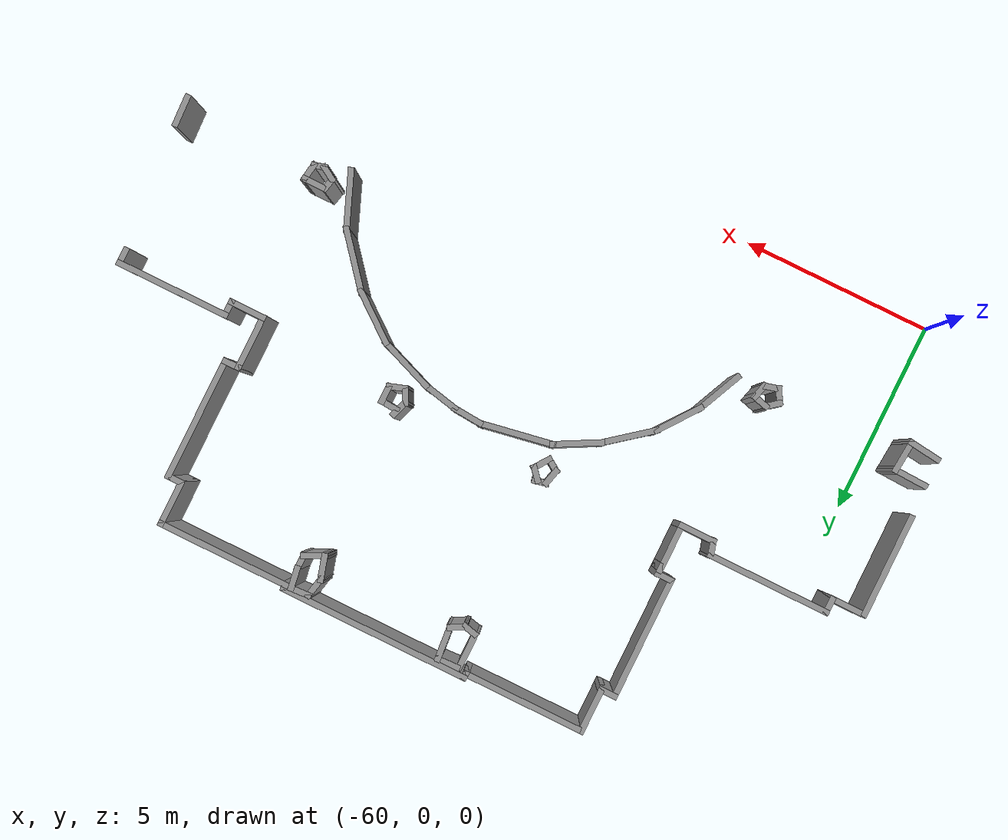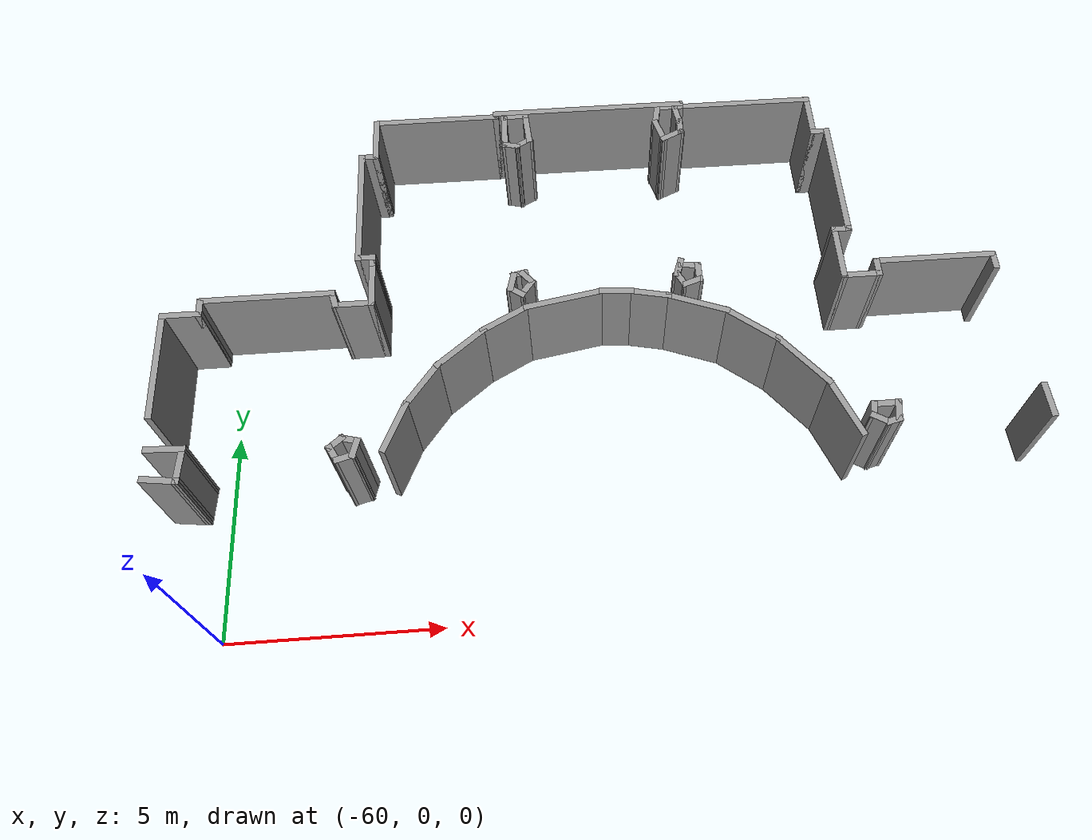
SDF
<sdf version="1.7">
 <model name="TD_n2">
  <pose>-6.42415 -9.1609 0 0 -0 0</pose>
  <link name="Wall_100">
   <collision name="Wall_100_Collision">
    <geometry><box><size>2.75 0.15 2.5</size></box></geometry>
    <pose>0 0 1.25 0 -0 0</pose>
   </collision>
   <visual name="Wall_100_Visual">
    <pose>0 0 1.25 0 -0 0</pose>
    <geometry><box><size>2.75 0.15 2.5</size></box></geometry>
    <material>
     <script><uri>file://media/materials/scripts/gazebo.material</uri><name>Gazebo/Grey</name></script>
     <ambient>1 1 1 1</ambient>
    </material>
    <meta><layer>0</layer></meta>
   </visual>
   <pose>-54.9332 15.0288 0 0 -0 1.5708</pose>
  </link>
  <link name="Wall_101">
   <collision name="Wall_101_Collision">
    <geometry><box><size>1 0.15 2.5</size></box></geometry>
    <pose>0 0 1.25 0 -0 0</pose>
   </collision>
   <visual name="Wall_101_Visual">
    <pose>0 0 1.25 0 -0 0</pose>
    <geometry><box><size>1 0.15 2.5</size></box></geometry>
    <material>
     <script><uri>file://media/materials/scripts/gazebo.material</uri><name>Gazebo/Grey</name></script>
     <ambient>1 1 1 1</ambient>
    </material>
    <meta><layer>0</layer></meta>
   </visual>
   <pose>-54.5082 16.3288 0 0 -0 0</pose>
  </link>
  <link name="Wall_102">
   <collision name="Wall_102_Collision">
    <geometry><box><size>0.5 0.15 2.5</size></box></geometry>
    <pose>0 0 1.25 0 -0 0</pose>
   </collision>
   <visual name="Wall_102_Visual">
    <pose>0 0 1.25 0 -0 0</pose>
    <geometry><box><size>0.5 0.15 2.5</size></box></geometry>
    <material>
     <script><uri>file://media/materials/scripts/gazebo.material</uri><name>Gazebo/Grey</name></script>
     <ambient>1 1 1 1</ambient>
    </material>
    <meta><layer>0</layer></meta>
   </visual>
   <pose>-54.0832 16.5038 0 0 -0 1.5708</pose>
  </link>
  <link name="Wall_103">
   <collision name="Wall_103_Collision">
    <geometry><box><size>3.25 0.15 2.5</size></box></geometry>
    <pose>0 0 1.25 0 -0 0</pose>
   </collision>
   <visual name="Wall_103_Visual">
    <pose>0 0 1.25 0 -0 0</pose>
    <geometry><box><size>3.25 0.15 2.5</size></box></geometry>
    <material>
     <script><uri>file://media/materials/scripts/gazebo.material</uri><name>Gazebo/Grey</name></script>
     <ambient>1 1 1 1</ambient>
    </material>
    <meta><layer>0</layer></meta>
   </visual>
   <pose>-52.5332 16.6788 0 0 -0 0</pose>
  </link>
  <link name="Wall_104">
   <collision name="Wall_104_Collision">
    <geometry><box><size>0.5 0.15 2.5</size></box></geometry>
    <pose>0 0 1.25 0 -0 0</pose>
   </collision>
   <visual name="Wall_104_Visual">
    <pose>0 0 1.25 0 -0 0</pose>
    <geometry><box><size>0.5 0.15 2.5</size></box></geometry>
    <material>
     <script><uri>file://media/materials/scripts/gazebo.material</uri><name>Gazebo/Grey</name></script>
     <ambient>1 1 1 1</ambient>
    </material>
    <meta><layer>0</layer></meta>
   </visual>
   <pose>-50.9379 16.5098 0 0 -0 -1.309</pose>
  </link>
  <link name="Wall_105">
   <collision name="Wall_105_Collision">
    <geometry><box><size>1 0.15 2.5</size></box></geometry>
    <pose>0 0 1.25 0 -0 0</pose>
   </collision>
   <visual name="Wall_105_Visual">
    <pose>0 0 1.25 0 -0 0</pose>
    <geometry><box><size>1 0.15 2.5</size></box></geometry>
    <material>
     <script><uri>file://media/materials/scripts/gazebo.material</uri><name>Gazebo/Grey</name></script>
     <ambient>1 1 1 1</ambient>
    </material>
    <meta><layer>0</layer></meta>
   </visual>
   <pose>-50.4676 16.3407 0 0 -0 0</pose>
  </link>
  <link name="Wall_106">
   <collision name="Wall_106_Collision">
    <geometry><box><size>1.25 0.15 2.5</size></box></geometry>
    <pose>0 0 1.25 0 -0 0</pose>
   </collision>
   <visual name="Wall_106_Visual">
    <pose>0 0 1.25 0 -0 0</pose>
    <geometry><box><size>1.25 0.15 2.5</size></box></geometry>
    <material>
     <script><uri>file://media/materials/scripts/gazebo.material</uri><name>Gazebo/Grey</name></script>
     <ambient>1 1 1 1</ambient>
    </material>
    <meta><layer>0</layer></meta>
   </visual>
   <pose>-50.0427 16.8907 0 0 -0 1.5708</pose>
  </link>
  <link name="Wall_108">
   <collision name="Wall_108_Collision">
    <geometry><box><size>0.25 0.15 2.5</size></box></geometry>
    <pose>0 0 1.25 0 -0 0</pose>
   </collision>
   <visual name="Wall_108_Visual">
    <pose>0 0 1.25 0 -0 0</pose>
    <geometry><box><size>0.25 0.15 2.5</size></box></geometry>
    <material>
     <script><uri>file://media/materials/scripts/gazebo.material</uri><name>Gazebo/Grey</name></script>
     <ambient>1 1 1 1</ambient>
    </material>
    <meta><layer>0</layer></meta>
   </visual>
   <pose>-50.0427 17.4907 0 0 -0 1.5708</pose>
  </link>
  <link name="Wall_109">
   <collision name="Wall_109_Collision">
    <geometry><box><size>0.15 0.15 2.5</size></box></geometry>
    <pose>0 0 1.25 0 -0 0</pose>
   </collision>
   <visual name="Wall_109_Visual">
    <pose>0 0 1.25 0 -0 0</pose>
    <geometry><box><size>0.15 0.15 2.5</size></box></geometry>
    <material>
     <script><uri>file://media/materials/scripts/gazebo.material</uri><name>Gazebo/Grey</name></script>
     <ambient>1 1 1 1</ambient>
    </material>
    <meta><layer>0</layer></meta>
   </visual>
   <pose>-50.0427 17.5407 0 0 -0 0</pose>
  </link>
  <link name="Wall_110">
   <collision name="Wall_110_Collision">
    <geometry><box><size>0.25 0.15 2.5</size></box></geometry>
    <pose>0 0 1.25 0 -0 0</pose>
   </collision>
   <visual name="Wall_110_Visual">
    <pose>0 0 1.25 0 -0 0</pose>
    <geometry><box><size>0.25 0.15 2.5</size></box></geometry>
    <material>
     <script><uri>file://media/materials/scripts/gazebo.material</uri><name>Gazebo/Grey</name></script>
     <ambient>1 1 1 1</ambient>
    </material>
    <meta><layer>0</layer></meta>
   </visual>
   <pose>-50.0427 17.5907 0 0 -0 1.5708</pose>
  </link>
  <link name="Wall_111">
   <collision name="Wall_111_Collision">
    <geometry><box><size>0.5 0.15 2.5</size></box></geometry>
    <pose>0 0 1.25 0 -0 0</pose>
   </collision>
   <visual name="Wall_111_Visual">
    <pose>0 0 1.25 0 -0 0</pose>
    <geometry><box><size>0.5 0.15 2.5</size></box></geometry>
    <material>
     <script><uri>file://media/materials/scripts/gazebo.material</uri><name>Gazebo/Grey</name></script>
     <ambient>1 1 1 1</ambient>
    </material>
    <meta><layer>0</layer></meta>
   </visual>
   <pose>-50.2176 17.6407 0 0 -0 3.14159</pose>
  </link>
  <link name="Wall_112">
   <collision name="Wall_112_Collision">
    <geometry><box><size>3.25 0.15 2.5</size></box></geometry>
    <pose>0 0 1.25 0 -0 0</pose>
   </collision>
   <visual name="Wall_112_Visual">
    <pose>0 0 1.25 0 -0 0</pose>
    <geometry><box><size>3.25 0.15 2.5</size></box></geometry>
    <material>
     <script><uri>file://media/materials/scripts/gazebo.material</uri><name>Gazebo/Grey</name></script>
     <ambient>1 1 1 1</ambient>
    </material>
    <meta><layer>0</layer></meta>
   </visual>
   <pose>-50.3926 19.1907 0 0 -0 1.5708</pose>
  </link>
  <link name="Wall_113">
   <collision name="Wall_113_Collision">
    <geometry><box><size>0.5 0.15 2.5</size></box></geometry>
    <pose>0 0 1.25 0 -0 0</pose>
   </collision>
   <visual name="Wall_113_Visual">
    <pose>0 0 1.25 0 -0 0</pose>
    <geometry><box><size>0.5 0.15 2.5</size></box></geometry>
    <material>
     <script><uri>file://media/materials/scripts/gazebo.material</uri><name>Gazebo/Grey</name></script>
     <ambient>1 1 1 1</ambient>
    </material>
    <meta><layer>0</layer></meta>
   </visual>
   <pose>-50.2176 20.7407 0 0 -0 0</pose>
  </link>
  <link name="Wall_114">
   <collision name="Wall_114_Collision">
    <geometry><box><size>1.25 0.15 2.5</size></box></geometry>
    <pose>0 0 1.25 0 -0 0</pose>
   </collision>
   <visual name="Wall_114_Visual">
    <pose>0 0 1.25 0 -0 0</pose>
    <geometry><box><size>1.25 0.15 2.5</size></box></geometry>
    <material>
     <script><uri>file://media/materials/scripts/gazebo.material</uri><name>Gazebo/Grey</name></script>
     <ambient>1 1 1 1</ambient>
    </material>
    <meta><layer>0</layer></meta>
   </visual>
   <pose>-50.0427 21.2907 0 0 -0 1.5708</pose>
  </link>
  <link name="Wall_115">
   <collision name="Wall_115_Collision">
    <geometry><box><size>3.25 0.15 2.5</size></box></geometry>
    <pose>0 0 1.25 0 -0 0</pose>
   </collision>
   <visual name="Wall_115_Visual">
    <pose>0 0 1.25 0 -0 0</pose>
    <geometry><box><size>3.25 0.15 2.5</size></box></geometry>
    <material>
     <script><uri>file://media/materials/scripts/gazebo.material</uri><name>Gazebo/Grey</name></script>
     <ambient>1 1 1 1</ambient>
    </material>
    <meta><layer>0</layer></meta>
   </visual>
   <pose>-48.4926 21.8407 0 0 -0 0</pose>
  </link>
  <link name="Wall_116">
   <collision name="Wall_116_Collision">
    <geometry><box><size>0.25 0.15 2.5</size></box></geometry>
    <pose>0 0 1.25 0 -0 0</pose>
   </collision>
   <visual name="Wall_116_Visual">
    <pose>0 0 1.25 0 -0 0</pose>
    <geometry><box><size>0.25 0.15 2.5</size></box></geometry>
    <material>
     <script><uri>file://media/materials/scripts/gazebo.material</uri><name>Gazebo/Grey</name></script>
     <ambient>1 1 1 1</ambient>
    </material>
    <meta><layer>0</layer></meta>
   </visual>
   <pose>-46.9426 21.8907 0 0 -0 1.5708</pose>
  </link>
  <link name="Wall_117">
   <collision name="Wall_117_Collision">
    <geometry><box><size>5 0.15 2.5</size></box></geometry>
    <pose>0 0 1.25 0 -0 0</pose>
   </collision>
   <visual name="Wall_117_Visual">
    <pose>0 0 1.25 0 -0 0</pose>
    <geometry><box><size>5 0.15 2.5</size></box></geometry>
    <material>
     <script><uri>file://media/materials/scripts/gazebo.material</uri><name>Gazebo/Grey</name></script>
     <ambient>1 1 1 1</ambient>
    </material>
    <meta><layer>0</layer></meta>
   </visual>
   <pose>-44.5176 21.9407 0 0 -0 0</pose>
  </link>
  <link name="Wall_118">
   <collision name="Wall_118_Collision">
    <geometry><box><size>0.25 0.15 2.5</size></box></geometry>
    <pose>0 0 1.25 0 -0 0</pose>
   </collision>
   <visual name="Wall_118_Visual">
    <pose>0 0 1.25 0 -0 0</pose>
    <geometry><box><size>0.25 0.15 2.5</size></box></geometry>
    <material>
     <script><uri>file://media/materials/scripts/gazebo.material</uri><name>Gazebo/Grey</name></script>
     <ambient>1 1 1 1</ambient>
    </material>
    <meta><layer>0</layer></meta>
   </visual>
   <pose>-42.0926 21.8907 0 0 -0 -1.5708</pose>
  </link>
  <link name="Wall_119">
   <collision name="Wall_119_Collision">
    <geometry><box><size>3.5 0.15 2.5</size></box></geometry>
    <pose>0 0 1.25 0 -0 0</pose>
   </collision>
   <visual name="Wall_119_Visual">
    <pose>0 0 1.25 0 -0 0</pose>
    <geometry><box><size>3.5 0.15 2.5</size></box></geometry>
    <material>
     <script><uri>file://media/materials/scripts/gazebo.material</uri><name>Gazebo/Grey</name></script>
     <ambient>1 1 1 1</ambient>
    </material>
    <meta><layer>0</layer></meta>
   </visual>
   <pose>-40.4177 21.8407 0 0 -0 0</pose>
  </link>
  <link name="Wall_120">
   <collision name="Wall_120_Collision">
    <geometry><box><size>1.25 0.15 2.5</size></box></geometry>
    <pose>0 0 1.25 0 -0 0</pose>
   </collision>
   <visual name="Wall_120_Visual">
    <pose>0 0 1.25 0 -0 0</pose>
    <geometry><box><size>1.25 0.15 2.5</size></box></geometry>
    <material>
     <script><uri>file://media/materials/scripts/gazebo.material</uri><name>Gazebo/Grey</name></script>
     <ambient>1 1 1 1</ambient>
    </material>
    <meta><layer>0</layer></meta>
   </visual>
   <pose>-38.7426 21.2907 0 0 -0 -1.5708</pose>
  </link>
  <link name="Wall_121">
   <collision name="Wall_121_Collision">
    <geometry><box><size>0.5 0.15 2.5</size></box></geometry>
    <pose>0 0 1.25 0 -0 0</pose>
   </collision>
   <visual name="Wall_121_Visual">
    <pose>0 0 1.25 0 -0 0</pose>
    <geometry><box><size>0.5 0.15 2.5</size></box></geometry>
    <material>
     <script><uri>file://media/materials/scripts/gazebo.material</uri><name>Gazebo/Grey</name></script>
     <ambient>1 1 1 1</ambient>
    </material>
    <meta><layer>0</layer></meta>
   </visual>
   <pose>-38.5676 20.7407 0 0 -0 0</pose>
  </link>
  <link name="Wall_122">
   <collision name="Wall_122_Collision">
    <geometry><box><size>3.25 0.15 2.5</size></box></geometry>
    <pose>0 0 1.25 0 -0 0</pose>
   </collision>
   <visual name="Wall_122_Visual">
    <pose>0 0 1.25 0 -0 0</pose>
    <geometry><box><size>3.25 0.15 2.5</size></box></geometry>
    <material>
     <script><uri>file://media/materials/scripts/gazebo.material</uri><name>Gazebo/Grey</name></script>
     <ambient>1 1 1 1</ambient>
    </material>
    <meta><layer>0</layer></meta>
   </visual>
   <pose>-38.3926 19.1907 0 0 -0 -1.5708</pose>
  </link>
  <link name="Wall_123">
   <collision name="Wall_123_Collision">
    <geometry><box><size>0.5 0.15 2.5</size></box></geometry>
    <pose>0 0 1.25 0 -0 0</pose>
   </collision>
   <visual name="Wall_123_Visual">
    <pose>0 0 1.25 0 -0 0</pose>
    <geometry><box><size>0.5 0.15 2.5</size></box></geometry>
    <material>
     <script><uri>file://media/materials/scripts/gazebo.material</uri><name>Gazebo/Grey</name></script>
     <ambient>1 1 1 1</ambient>
    </material>
    <meta><layer>0</layer></meta>
   </visual>
   <pose>-38.5676 17.6407 0 0 -0 3.14159</pose>
  </link>
  <link name="Wall_125">
   <collision name="Wall_125_Collision">
    <geometry><box><size>1.5 0.15 2.5</size></box></geometry>
    <pose>0 0 1.25 0 -0 0</pose>
   </collision>
   <visual name="Wall_125_Visual">
    <pose>0 0 1.25 0 -0 0</pose>
    <geometry><box><size>1.5 0.15 2.5</size></box></geometry>
    <material>
     <script><uri>file://media/materials/scripts/gazebo.material</uri><name>Gazebo/Grey</name></script>
     <ambient>1 1 1 1</ambient>
    </material>
    <meta><layer>0</layer></meta>
   </visual>
   <pose>-38.7426 16.9657 0 0 -0 -1.5708</pose>
  </link>
  <link name="Wall_126">
   <collision name="Wall_126_Collision">
    <geometry><box><size>1 0.15 2.5</size></box></geometry>
    <pose>0 0 1.25 0 -0 0</pose>
   </collision>
   <visual name="Wall_126_Visual">
    <pose>0 0 1.25 0 -0 0</pose>
    <geometry><box><size>1 0.15 2.5</size></box></geometry>
    <material>
     <script><uri>file://media/materials/scripts/gazebo.material</uri><name>Gazebo/Grey</name></script>
     <ambient>1 1 1 1</ambient>
    </material>
    <meta><layer>0</layer></meta>
   </visual>
   <pose>-38.3176 16.2907 0 0 -0 0</pose>
  </link>
  <link name="Wall_127">
   <collision name="Wall_127_Collision">
    <geometry><box><size>0.5 0.15 2.5</size></box></geometry>
    <pose>0 0 1.25 0 -0 0</pose>
   </collision>
   <visual name="Wall_127_Visual">
    <pose>0 0 1.25 0 -0 0</pose>
    <geometry><box><size>0.5 0.15 2.5</size></box></geometry>
    <material>
     <script><uri>file://media/materials/scripts/gazebo.material</uri><name>Gazebo/Grey</name></script>
     <ambient>1 1 1 1</ambient>
    </material>
    <meta><layer>0</layer></meta>
   </visual>
   <pose>-37.8926 16.4657 0 0 -0 1.5708</pose>
  </link>
  <link name="Wall_128">
   <collision name="Wall_128_Collision">
    <geometry><box><size>3 0.15 2.5</size></box></geometry>
    <pose>0 0 1.25 0 -0 0</pose>
   </collision>
   <visual name="Wall_128_Visual">
    <pose>0 0 1.25 0 -0 0</pose>
    <geometry><box><size>3 0.15 2.5</size></box></geometry>
    <material>
     <script><uri>file://media/materials/scripts/gazebo.material</uri><name>Gazebo/Grey</name></script>
     <ambient>1 1 1 1</ambient>
    </material>
    <meta><layer>0</layer></meta>
   </visual>
   <pose>-36.4676 16.6407 0 0 -0 0</pose>
  </link>
  <link name="Wall_129">
   <collision name="Wall_129_Collision">
    <geometry><box><size>0.5 0.15 2.5</size></box></geometry>
    <pose>0 0 1.25 0 -0 0</pose>
   </collision>
   <visual name="Wall_129_Visual">
    <pose>0 0 1.25 0 -0 0</pose>
    <geometry><box><size>0.5 0.15 2.5</size></box></geometry>
    <material>
     <script><uri>file://media/materials/scripts/gazebo.material</uri><name>Gazebo/Grey</name></script>
     <ambient>1 1 1 1</ambient>
    </material>
    <meta><layer>0</layer></meta>
   </visual>
   <pose>-35.0427 16.4657 0 0 -0 -1.5708</pose>
  </link>
  <link name="Wall_325">
   <collision name="Wall_325_Collision">
    <geometry><box><size>1.98676 0.15 2.5</size></box></geometry>
    <pose>0 0 1.25 0 -0 0</pose>
   </collision>
   <visual name="Wall_325_Visual">
    <pose>0 0 1.25 0 -0 0</pose>
    <geometry><box><size>1.98676 0.15 2.5</size></box></geometry>
    <material>
     <script><uri>file://media/materials/scripts/gazebo.material</uri><name>Gazebo/Grey</name></script>
     <ambient>1 1 1 1</ambient>
    </material>
    <meta><layer>0</layer></meta>
   </visual>
   <pose>-45.4816 16.113 0 0 -0 -2.96692</pose>
  </link>
  <link name="Wall_326">
   <collision name="Wall_326_Collision">
    <geometry><box><size>1.32824 0.15 2.5</size></box></geometry>
    <pose>0 0 1.25 0 -0 0</pose>
   </collision>
   <visual name="Wall_326_Visual">
    <pose>0 0 1.25 0 -0 0</pose>
    <geometry><box><size>1.32824 0.15 2.5</size></box></geometry>
    <material>
     <script><uri>file://media/materials/scripts/gazebo.material</uri><name>Gazebo/Grey</name></script>
     <ambient>1 1 1 1</ambient>
    </material>
    <meta><layer>0</layer></meta>
   </visual>
   <pose>-46.9047 15.6741 0 0 -0 -2.64765</pose>
  </link>
  <link name="Wall_327">
   <collision name="Wall_327_Collision">
    <geometry><box><size>1.51259 0.15 2.5</size></box></geometry>
    <pose>0 0 1.25 0 -0 0</pose>
   </collision>
   <visual name="Wall_327_Visual">
    <pose>0 0 1.25 0 -0 0</pose>
    <geometry><box><size>1.51259 0.15 2.5</size></box></geometry>
    <material>
     <script><uri>file://media/materials/scripts/gazebo.material</uri><name>Gazebo/Grey</name></script>
     <ambient>1 1 1 1</ambient>
    </material>
    <meta><layer>0</layer></meta>
   </visual>
   <pose>-47.9554 14.9692 0 0 -0 -2.46685</pose>
  </link>
  <link name="Wall_328">
   <collision name="Wall_328_Collision">
    <geometry><box><size>1.34701 0.15 2.5</size></box></geometry>
    <pose>0 0 1.25 0 -0 0</pose>
   </collision>
   <visual name="Wall_328_Visual">
    <pose>0 0 1.25 0 -0 0</pose>
    <geometry><box><size>1.34701 0.15 2.5</size></box></geometry>
    <material>
     <script><uri>file://media/materials/scripts/gazebo.material</uri><name>Gazebo/Grey</name></script>
     <ambient>1 1 1 1</ambient>
    </material>
    <meta><layer>0</layer></meta>
   </visual>
   <pose>-48.8465 14.0648 0 0 -0 -2.2143</pose>
  </link>
  <link name="Wall_329">
   <collision name="Wall_329_Collision">
    <geometry><box><size>1.31678 0.15 2.5</size></box></geometry>
    <pose>0 0 1.25 0 -0 0</pose>
   </collision>
   <visual name="Wall_329_Visual">
    <pose>0 0 1.25 0 -0 0</pose>
    <geometry><box><size>1.31678 0.15 2.5</size></box></geometry>
    <material>
     <script><uri>file://media/materials/scripts/gazebo.material</uri><name>Gazebo/Grey</name></script>
     <ambient>1 1 1 1</ambient>
    </material>
    <meta><layer>0</layer></meta>
   </visual>
   <pose>-49.445 13.054 0 0 -0 -1.99365</pose>
  </link>
  <link name="Wall_344">
   <collision name="Wall_344_Collision">
    <geometry><box><size>1.58247 0.15 2.5</size></box></geometry>
    <pose>0 0 1.25 0 -0 0</pose>
   </collision>
   <visual name="Wall_344_Visual">
    <pose>0 0 1.25 0 -0 0</pose>
    <geometry><box><size>1.58247 0.15 2.5</size></box></geometry>
    <material>
     <script><uri>file://media/materials/scripts/gazebo.material</uri><name>Gazebo/Grey</name></script>
     <ambient>1 1 1 1</ambient>
    </material>
    <meta><layer>0</layer></meta>
   </visual>
   <pose>-39.3369 12.8146 0 0 -0 1.9513</pose>
  </link>
  <link name="Wall_345">
   <collision name="Wall_345_Collision">
    <geometry><box><size>1.69968 0.15 2.5</size></box></geometry>
    <pose>0 0 1.25 0 -0 0</pose>
   </collision>
   <visual name="Wall_345_Visual">
    <pose>0 0 1.25 0 -0 0</pose>
    <geometry><box><size>1.69968 0.15 2.5</size></box></geometry>
    <material>
     <script><uri>file://media/materials/scripts/gazebo.material</uri><name>Gazebo/Grey</name></script>
     <ambient>1 1 1 1</ambient>
    </material>
    <meta><layer>0</layer></meta>
   </visual>
   <pose>-40.0951 14.0781 0 0 -0 2.25894</pose>
  </link>
  <link name="Wall_346">
   <collision name="Wall_346_Collision">
    <geometry><box><size>1.53347 0.15 2.5</size></box></geometry>
    <pose>0 0 1.25 0 -0 0</pose>
   </collision>
   <visual name="Wall_346_Visual">
    <pose>0 0 1.25 0 -0 0</pose>
    <geometry><box><size>1.53347 0.15 2.5</size></box></geometry>
    <material>
     <script><uri>file://media/materials/scripts/gazebo.material</uri><name>Gazebo/Grey</name></script>
     <ambient>1 1 1 1</ambient>
    </material>
    <meta><layer>0</layer></meta>
   </visual>
   <pose>-41.1325 15.1022 0 0 -0 2.47886</pose>
  </link>
  <link name="Wall_347">
   <collision name="Wall_347_Collision">
    <geometry><box><size>1.5728 0.15 2.5</size></box></geometry>
    <pose>0 0 1.25 0 -0 0</pose>
   </collision>
   <visual name="Wall_347_Visual">
    <pose>0 0 1.25 0 -0 0</pose>
    <geometry><box><size>1.5728 0.15 2.5</size></box></geometry>
    <material>
     <script><uri>file://media/materials/scripts/gazebo.material</uri><name>Gazebo/Grey</name></script>
     <ambient>1 1 1 1</ambient>
    </material>
    <meta><layer>0</layer></meta>
   </visual>
   <pose>-42.3428 15.7805 0 0 -0 2.77845</pose>
  </link>
  <link name="Wall_348">
   <collision name="Wall_348_Collision">
    <geometry><box><size>1.04734 0.15 2.5</size></box></geometry>
    <pose>0 0 1.25 0 -0 0</pose>
   </collision>
   <visual name="Wall_348_Visual">
    <pose>0 0 1.25 0 -0 0</pose>
    <geometry><box><size>1.04734 0.15 2.5</size></box></geometry>
    <material>
     <script><uri>file://media/materials/scripts/gazebo.material</uri><name>Gazebo/Grey</name></script>
     <ambient>1 1 1 1</ambient>
    </material>
    <meta><layer>0</layer></meta>
   </visual>
   <pose>-43.4467 16.1263 0 0 -0 2.93257</pose>
  </link>
  <link name="Wall_349">
   <collision name="Wall_349_Collision">
    <geometry><box><size>0.843648 0.15 2.5</size></box></geometry>
    <pose>0 0 1.25 0 -0 0</pose>
   </collision>
   <visual name="Wall_349_Visual">
    <pose>0 0 1.25 0 -0 0</pose>
    <geometry><box><size>0.843648 0.15 2.5</size></box></geometry>
    <material>
     <script><uri>file://media/materials/scripts/gazebo.material</uri><name>Gazebo/Grey</name></script>
     <ambient>1 1 1 1</ambient>
    </material>
    <meta><layer>0</layer></meta>
   </visual>
   <pose>-44.2314 16.246 0 0 -0 3.06482</pose>
  </link>
  <link name="Wall_351">
   <collision name="Wall_351_Collision">
    <geometry><box><size>1.02896 0.15 2.5</size></box></geometry>
    <pose>0 0 1.25 0 -0 0</pose>
   </collision>
   <visual name="Wall_351_Visual">
    <pose>0 0 1.25 0 -0 0</pose>
    <geometry><box><size>1.02896 0.15 2.5</size></box></geometry>
    <material>
     <script><uri>file://media/materials/scripts/gazebo.material</uri><name>Gazebo/Grey</name></script>
     <ambient>1 1 1 1</ambient>
    </material>
    <meta><layer>0</layer></meta>
   </visual>
   <pose>-46.7288 21.3317 0 0 -0 -1.5708</pose>
  </link>
  <link name="Wall_352">
   <collision name="Wall_352_Collision">
    <geometry><box><size>0.458601 0.15 2.5</size></box></geometry>
    <pose>0 0 1.25 0 -0 0</pose>
   </collision>
   <visual name="Wall_352_Visual">
    <pose>0 0 1.25 0 -0 0</pose>
    <geometry><box><size>0.458601 0.15 2.5</size></box></geometry>
    <material>
     <script><uri>file://media/materials/scripts/gazebo.material</uri><name>Gazebo/Grey</name></script>
     <ambient>1 1 1 1</ambient>
    </material>
    <meta><layer>0</layer></meta>
   </visual>
   <pose>-46.5784 20.8575 0 0 -0 -0.226799</pose>
  </link>
  <link name="Wall_353">
   <collision name="Wall_353_Collision">
    <geometry><box><size>0.52297 0.15 2.5</size></box></geometry>
    <pose>0 0 1.25 0 -0 0</pose>
   </collision>
   <visual name="Wall_353_Visual">
    <pose>0 0 1.25 0 -0 0</pose>
    <geometry><box><size>0.52297 0.15 2.5</size></box></geometry>
    <material>
     <script><uri>file://media/materials/scripts/gazebo.material</uri><name>Gazebo/Grey</name></script>
     <ambient>1 1 1 1</ambient>
    </material>
    <meta><layer>0</layer></meta>
   </visual>
   <pose>-46.2661 20.9154 0 0 -0 0.519146</pose>
  </link>
  <link name="Wall_354">
   <collision name="Wall_354_Collision">
    <geometry><box><size>0.96254 0.15 2.5</size></box></geometry>
    <pose>0 0 1.25 0 -0 0</pose>
   </collision>
   <visual name="Wall_354_Visual">
    <pose>0 0 1.25 0 -0 0</pose>
    <geometry><box><size>0.96254 0.15 2.5</size></box></geometry>
    <material>
     <script><uri>file://media/materials/scripts/gazebo.material</uri><name>Gazebo/Grey</name></script>
     <ambient>1 1 1 1</ambient>
    </material>
    <meta><layer>0</layer></meta>
   </visual>
   <pose>-46.1389 21.4127 0 0 -0 1.6563</pose>
  </link>
  <link name="Wall_355">
   <collision name="Wall_355_Collision">
    <geometry><box><size>0.659399 0.15 2.5</size></box></geometry>
    <pose>0 0 1.25 0 -0 0</pose>
   </collision>
   <visual name="Wall_355_Visual">
    <pose>0 0 1.25 0 -0 0</pose>
    <geometry><box><size>0.659399 0.15 2.5</size></box></geometry>
    <material>
     <script><uri>file://media/materials/scripts/gazebo.material</uri><name>Gazebo/Grey</name></script>
     <ambient>1 1 1 1</ambient>
    </material>
    <meta><layer>0</layer></meta>
   </visual>
   <pose>-46.4281 21.8059 0 0 -0 -3.09617</pose>
  </link>
  <link name="Wall_357">
   <collision name="Wall_357_Collision">
    <geometry><box><size>0.728265 0.15 2.5</size></box></geometry>
    <pose>0 0 1.25 0 -0 0</pose>
   </collision>
   <visual name="Wall_357_Visual">
    <pose>0 0 1.25 0 -0 0</pose>
    <geometry><box><size>0.728265 0.15 2.5</size></box></geometry>
    <material>
     <script><uri>file://media/materials/scripts/gazebo.material</uri><name>Gazebo/Grey</name></script>
     <ambient>1 1 1 1</ambient>
    </material>
    <meta><layer>0</layer></meta>
   </visual>
   <pose>-42.7156 21.0773 0 0 -0 -1.287</pose>
  </link>
  <link name="Wall_358">
   <collision name="Wall_358_Collision">
    <geometry><box><size>0.657294 0.15 2.5</size></box></geometry>
    <pose>0 0 1.25 0 -0 0</pose>
   </collision>
   <visual name="Wall_358_Visual">
    <pose>0 0 1.25 0 -0 0</pose>
    <geometry><box><size>0.657294 0.15 2.5</size></box></geometry>
    <material>
     <script><uri>file://media/materials/scripts/gazebo.material</uri><name>Gazebo/Grey</name></script>
     <ambient>1 1 1 1</ambient>
    </material>
    <meta><layer>0</layer></meta>
   </visual>
   <pose>-42.4033 20.9038 0 0 -0 0.422854</pose>
  </link>
  <link name="Wall_359">
   <collision name="Wall_359_Collision">
    <geometry><box><size>0.5 0.15 2.5</size></box></geometry>
    <pose>0 0 1.25 0 -0 0</pose>
   </collision>
   <visual name="Wall_359_Visual">
    <pose>0 0 1.25 0 -0 0</pose>
    <geometry><box><size>0.5 0.15 2.5</size></box></geometry>
    <material>
     <script><uri>file://media/materials/scripts/gazebo.material</uri><name>Gazebo/Grey</name></script>
     <ambient>1 1 1 1</ambient>
    </material>
    <meta><layer>0</layer></meta>
   </visual>
   <pose>-42.172 21.1829 0 0 -0 1.5708</pose>
  </link>
  <link name="Wall_360">
   <collision name="Wall_360_Collision">
    <geometry><box><size>0.645057 0.15 2.5</size></box></geometry>
    <pose>0 0 1.25 0 -0 0</pose>
   </collision>
   <visual name="Wall_360_Visual">
    <pose>0 0 1.25 0 -0 0</pose>
    <geometry><box><size>0.645057 0.15 2.5</size></box></geometry>
    <material>
     <script><uri>file://media/materials/scripts/gazebo.material</uri><name>Gazebo/Grey</name></script>
     <ambient>1 1 1 1</ambient>
    </material>
    <meta><layer>0</layer></meta>
   </visual>
   <pose>-42.2108 21.6024 0 0 -0 1.72813</pose>
  </link>
  <link name="Wall_361">
   <collision name="Wall_361_Collision">
    <geometry><box><size>0.602985 0.15 2.5</size></box></geometry>
    <pose>0 0 1.25 0 -0 0</pose>
   </collision>
   <visual name="Wall_361_Visual">
    <pose>0 0 1.25 0 -0 0</pose>
    <geometry><box><size>0.602985 0.15 2.5</size></box></geometry>
    <material>
     <script><uri>file://media/materials/scripts/gazebo.material</uri><name>Gazebo/Grey</name></script>
     <ambient>1 1 1 1</ambient>
    </material>
    <meta><layer>0</layer></meta>
   </visual>
   <pose>-42.4757 21.8335 0 0 -0 -3.08284</pose>
  </link>
  <link name="Wall_362">
   <collision name="Wall_362_Collision">
    <geometry><box><size>0.624931 0.15 2.5</size></box></geometry>
    <pose>0 0 1.25 0 -0 0</pose>
   </collision>
   <visual name="Wall_362_Visual">
    <pose>0 0 1.25 0 -0 0</pose>
    <geometry><box><size>0.624931 0.15 2.5</size></box></geometry>
    <material>
     <script><uri>file://media/materials/scripts/gazebo.material</uri><name>Gazebo/Grey</name></script>
     <ambient>1 1 1 1</ambient>
    </material>
    <meta><layer>0</layer></meta>
   </visual>
   <pose>-42.7492 21.5875 0 0 -0 -1.77165</pose>
  </link>
  <link name="Wall_364">
   <collision name="Wall_364_Collision">
    <geometry><box><size>0.475179 0.15 2.5</size></box></geometry>
    <pose>0 0 1.25 0 -0 0</pose>
   </collision>
   <visual name="Wall_364_Visual">
    <pose>0 0 1.25 0 -0 0</pose>
    <geometry><box><size>0.475179 0.15 2.5</size></box></geometry>
    <material>
     <script><uri>file://media/materials/scripts/gazebo.material</uri><name>Gazebo/Grey</name></script>
     <ambient>1 1 1 1</ambient>
    </material>
    <meta><layer>0</layer></meta>
   </visual>
   <pose>-46.3333 16.7755 0 0 -0 -0.851966</pose>
  </link>
  <link name="Wall_365">
   <collision name="Wall_365_Collision">
    <geometry><box><size>0.566072 0.15 2.5</size></box></geometry>
    <pose>0 0 1.25 0 -0 0</pose>
   </collision>
   <visual name="Wall_365_Visual">
    <pose>0 0 1.25 0 -0 0</pose>
    <geometry><box><size>0.566072 0.15 2.5</size></box></geometry>
    <material>
     <script><uri>file://media/materials/scripts/gazebo.material</uri><name>Gazebo/Grey</name></script>
     <ambient>1 1 1 1</ambient>
    </material>
    <meta><layer>0</layer></meta>
   </visual>
   <pose>-46.3486 16.4848 0 0 -0 -2.19959</pose>
  </link>
  <link name="Wall_366">
   <collision name="Wall_366_Collision">
    <geometry><box><size>0.480884 0.15 2.5</size></box></geometry>
    <pose>0 0 1.25 0 -0 0</pose>
   </collision>
   <visual name="Wall_366_Visual">
    <pose>0 0 1.25 0 -0 0</pose>
    <geometry><box><size>0.480884 0.15 2.5</size></box></geometry>
    <material>
     <script><uri>file://media/materials/scripts/gazebo.material</uri><name>Gazebo/Grey</name></script>
     <ambient>1 1 1 1</ambient>
    </material>
    <meta><layer>0</layer></meta>
   </visual>
   <pose>-46.6086 16.4084 0 0 -0 2.55359</pose>
  </link>
  <link name="Wall_367">
   <collision name="Wall_367_Collision">
    <geometry><box><size>0.52838 0.15 2.5</size></box></geometry>
    <pose>0 0 1.25 0 -0 0</pose>
   </collision>
   <visual name="Wall_367_Visual">
    <pose>0 0 1.25 0 -0 0</pose>
    <geometry><box><size>0.52838 0.15 2.5</size></box></geometry>
    <material>
     <script><uri>file://media/materials/scripts/gazebo.material</uri><name>Gazebo/Grey</name></script>
     <ambient>1 1 1 1</ambient>
    </material>
    <meta><layer>0</layer></meta>
   </visual>
   <pose>-46.7004 16.6837 0 0 -0 1.32582</pose>
  </link>
  <link name="Wall_368">
   <collision name="Wall_368_Collision">
    <geometry><box><size>0.432028 0.15 2.5</size></box></geometry>
    <pose>0 0 1.25 0 -0 0</pose>
   </collision>
   <visual name="Wall_368_Visual">
    <pose>0 0 1.25 0 -0 0</pose>
    <geometry><box><size>0.432028 0.15 2.5</size></box></geometry>
    <material>
     <script><uri>file://media/materials/scripts/gazebo.material</uri><name>Gazebo/Grey</name></script>
     <ambient>1 1 1 1</ambient>
    </material>
    <meta><layer>0</layer></meta>
   </visual>
   <pose>-46.5169 16.8978 0 0 -0 0.218669</pose>
  </link>
  <link name="Wall_370">
   <collision name="Wall_370_Collision">
    <geometry><box><size>0.548848 0.15 2.5</size></box></geometry>
    <pose>0 0 1.25 0 -0 0</pose>
   </collision>
   <visual name="Wall_370_Visual">
    <pose>0 0 1.25 0 -0 0</pose>
    <geometry><box><size>0.548848 0.15 2.5</size></box></geometry>
    <material>
     <script><uri>file://media/materials/scripts/gazebo.material</uri><name>Gazebo/Grey</name></script>
     <ambient>1 1 1 1</ambient>
    </material>
    <meta><layer>0</layer></meta>
   </visual>
   <pose>-42.4178 16.8519 0 0 -0 -0.076772</pose>
  </link>
  <link name="Wall_371">
   <collision name="Wall_371_Collision">
    <geometry><box><size>0.547673 0.15 2.5</size></box></geometry>
    <pose>0 0 1.25 0 -0 0</pose>
   </collision>
   <visual name="Wall_371_Visual">
    <pose>0 0 1.25 0 -0 0</pose>
    <geometry><box><size>0.547673 0.15 2.5</size></box></geometry>
    <material>
     <script><uri>file://media/materials/scripts/gazebo.material</uri><name>Gazebo/Grey</name></script>
     <ambient>1 1 1 1</ambient>
    </material>
    <meta><layer>0</layer></meta>
   </visual>
   <pose>-42.2189 16.6378 0 0 -0 -1.5708</pose>
  </link>
  <link name="Wall_372">
   <collision name="Wall_372_Collision">
    <geometry><box><size>0.536939 0.15 2.5</size></box></geometry>
    <pose>0 0 1.25 0 -0 0</pose>
   </collision>
   <visual name="Wall_372_Visual">
    <pose>0 0 1.25 0 -0 0</pose>
    <geometry><box><size>0.536939 0.15 2.5</size></box></geometry>
    <material>
     <script><uri>file://media/materials/scripts/gazebo.material</uri><name>Gazebo/Grey</name></script>
     <ambient>1 1 1 1</ambient>
    </material>
    <meta><layer>0</layer></meta>
   </visual>
   <pose>-42.4025 16.3778 0 0 -0 -2.81984</pose>
  </link>
  <link name="Wall_373">
   <collision name="Wall_373_Collision">
    <geometry><box><size>0.492009 0.15 2.5</size></box></geometry>
    <pose>0 0 1.25 0 -0 0</pose>
   </collision>
   <visual name="Wall_373_Visual">
    <pose>0 0 1.25 0 -0 0</pose>
    <geometry><box><size>0.492009 0.15 2.5</size></box></geometry>
    <material>
     <script><uri>file://media/materials/scripts/gazebo.material</uri><name>Gazebo/Grey</name></script>
     <ambient>1 1 1 1</ambient>
    </material>
    <meta><layer>0</layer></meta>
   </visual>
   <pose>-42.6625 16.4695 0 0 -0 2.03444</pose>
  </link>
  <link name="Wall_374">
   <collision name="Wall_374_Collision">
    <geometry><box><size>0.536939 0.15 2.5</size></box></geometry>
    <pose>0 0 1.25 0 -0 0</pose>
   </collision>
   <visual name="Wall_374_Visual">
    <pose>0 0 1.25 0 -0 0</pose>
    <geometry><box><size>0.536939 0.15 2.5</size></box></geometry>
    <material>
     <script><uri>file://media/materials/scripts/gazebo.material</uri><name>Gazebo/Grey</name></script>
     <ambient>1 1 1 1</ambient>
    </material>
    <meta><layer>0</layer></meta>
   </visual>
   <pose>-42.6778 16.806 0 0 -0 1.24905</pose>
  </link>
  <link name="Wall_376">
   <collision name="Wall_376_Collision">
    <geometry><box><size>0.639444 0.15 2.5</size></box></geometry>
    <pose>0 0 1.25 0 -0 0</pose>
   </collision>
   <visual name="Wall_376_Visual">
    <pose>0 0 1.25 0 -0 0</pose>
    <geometry><box><size>0.639444 0.15 2.5</size></box></geometry>
    <material>
     <script><uri>file://media/materials/scripts/gazebo.material</uri><name>Gazebo/Grey</name></script>
     <ambient>1 1 1 1</ambient>
    </material>
    <meta><layer>0</layer></meta>
   </visual>
   <pose>-38.3952 12.8293 0 0 -0 0</pose>
  </link>
  <link name="Wall_377">
   <collision name="Wall_377_Collision">
    <geometry><box><size>0.552352 0.15 2.5</size></box></geometry>
    <pose>0 0 1.25 0 -0 0</pose>
   </collision>
   <visual name="Wall_377_Visual">
    <pose>0 0 1.25 0 -0 0</pose>
    <geometry><box><size>0.552352 0.15 2.5</size></box></geometry>
    <material>
     <script><uri>file://media/materials/scripts/gazebo.material</uri><name>Gazebo/Grey</name></script>
     <ambient>1 1 1 1</ambient>
    </material>
    <meta><layer>0</layer></meta>
   </visual>
   <pose>-38.181 12.6305 0 0 -0 -1.72345</pose>
  </link>
  <link name="Wall_378">
   <collision name="Wall_378_Collision">
    <geometry><box><size>0.402253 0.15 2.5</size></box></geometry>
    <pose>0 0 1.25 0 -0 0</pose>
   </collision>
   <visual name="Wall_378_Visual">
    <pose>0 0 1.25 0 -0 0</pose>
    <geometry><box><size>0.402253 0.15 2.5</size></box></geometry>
    <material>
     <script><uri>file://media/materials/scripts/gazebo.material</uri><name>Gazebo/Grey</name></script>
     <ambient>1 1 1 1</ambient>
    </material>
    <meta><layer>0</layer></meta>
   </visual>
   <pose>-38.334 12.401 0 0 -0 -2.89661</pose>
  </link>
  <link name="Wall_379">
   <collision name="Wall_379_Collision">
    <geometry><box><size>0.50674 0.15 2.5</size></box></geometry>
    <pose>0 0 1.25 0 -0 0</pose>
   </collision>
   <visual name="Wall_379_Visual">
    <pose>0 0 1.25 0 -0 0</pose>
    <geometry><box><size>0.50674 0.15 2.5</size></box></geometry>
    <material>
     <script><uri>file://media/materials/scripts/gazebo.material</uri><name>Gazebo/Grey</name></script>
     <ambient>1 1 1 1</ambient>
    </material>
    <meta><layer>0</layer></meta>
   </visual>
   <pose>-38.6093 12.4622 0 0 -0 2.60117</pose>
  </link>
  <link name="Wall_380">
   <collision name="Wall_380_Collision">
    <geometry><box><size>0.432028 0.15 2.5</size></box></geometry>
    <pose>0 0 1.25 0 -0 0</pose>
   </collision>
   <visual name="Wall_380_Visual">
    <pose>0 0 1.25 0 -0 0</pose>
    <geometry><box><size>0.432028 0.15 2.5</size></box></geometry>
    <material>
     <script><uri>file://media/materials/scripts/gazebo.material</uri><name>Gazebo/Grey</name></script>
     <ambient>1 1 1 1</ambient>
    </material>
    <meta><layer>0</layer></meta>
   </visual>
   <pose>-38.7316 12.6917 0 0 -0 1.35213</pose>
  </link>
  <link name="Wall_382">
   <collision name="Wall_382_Collision">
    <geometry><box><size>0.5 0.15 2.5</size></box></geometry>
    <pose>0 0 1.25 0 -0 0</pose>
   </collision>
   <visual name="Wall_382_Visual">
    <pose>0 0 1.25 0 -0 0</pose>
    <geometry><box><size>0.5 0.15 2.5</size></box></geometry>
    <material>
     <script><uri>file://media/materials/scripts/gazebo.material</uri><name>Gazebo/Grey</name></script>
     <ambient>1 1 1 1</ambient>
    </material>
    <meta><layer>0</layer></meta>
   </visual>
   <pose>-50.4316 12.8146 0 0 -0 -0.261799</pose>
  </link>
  <link name="Wall_383">
   <collision name="Wall_383_Collision">
    <geometry><box><size>0.5 0.15 2.5</size></box></geometry>
    <pose>0 0 1.25 0 -0 0</pose>
   </collision>
   <visual name="Wall_383_Visual">
    <pose>0 0 1.25 0 -0 0</pose>
    <geometry><box><size>0.5 0.15 2.5</size></box></geometry>
    <material>
     <script><uri>file://media/materials/scripts/gazebo.material</uri><name>Gazebo/Grey</name></script>
     <ambient>1 1 1 1</ambient>
    </material>
    <meta><layer>0</layer></meta>
   </visual>
   <pose>-50.3079 12.6003 0 0 -0 -1.8326</pose>
  </link>
  <link name="Wall_384">
   <collision name="Wall_384_Collision">
    <geometry><box><size>0.5 0.15 2.5</size></box></geometry>
    <pose>0 0 1.25 0 -0 0</pose>
   </collision>
   <visual name="Wall_384_Visual">
    <pose>0 0 1.25 0 -0 0</pose>
    <geometry><box><size>0.5 0.15 2.5</size></box></geometry>
    <material>
     <script><uri>file://media/materials/scripts/gazebo.material</uri><name>Gazebo/Grey</name></script>
     <ambient>1 1 1 1</ambient>
    </material>
    <meta><layer>0</layer></meta>
   </visual>
   <pose>-50.5222 12.3859 0 0 -0 -2.87979</pose>
  </link>
  <link name="Wall_385">
   <collision name="Wall_385_Collision">
    <geometry><box><size>0.5 0.15 2.5</size></box></geometry>
    <pose>0 0 1.25 0 -0 0</pose>
   </collision>
   <visual name="Wall_385_Visual">
    <pose>0 0 1.25 0 -0 0</pose>
    <geometry><box><size>0.5 0.15 2.5</size></box></geometry>
    <material>
     <script><uri>file://media/materials/scripts/gazebo.material</uri><name>Gazebo/Grey</name></script>
     <ambient>1 1 1 1</ambient>
    </material>
    <meta><layer>0</layer></meta>
   </visual>
   <pose>-50.7787 12.4922 0 0 -0 2.0944</pose>
  </link>
  <link name="Wall_386">
   <collision name="Wall_386_Collision">
    <geometry><box><size>0.492421 0.15 2.5</size></box></geometry>
    <pose>0 0 1.25 0 -0 0</pose>
   </collision>
   <visual name="Wall_386_Visual">
    <pose>0 0 1.25 0 -0 0</pose>
    <geometry><box><size>0.492421 0.15 2.5</size></box></geometry>
    <material>
     <script><uri>file://media/materials/scripts/gazebo.material</uri><name>Gazebo/Grey</name></script>
     <ambient>1 1 1 1</ambient>
    </material>
    <meta><layer>0</layer></meta>
   </visual>
   <pose>-50.7334 12.7518 0 0 -0 0.683108</pose>
  </link>
  <link name="Wall_400">
   <collision name="Wall_400_Collision">
    <geometry><box><size>0.945934 0.15 2.5</size></box></geometry>
    <pose>0 0 1.25 0 -0 0</pose>
   </collision>
   <visual name="Wall_400_Visual">
    <pose>0 0 1.25 0 -0 0</pose>
    <geometry><box><size>0.945934 0.15 2.5</size></box></geometry>
    <material>
     <script><uri>file://media/materials/scripts/gazebo.material</uri><name>Gazebo/Grey</name></script>
     <ambient>1 1 1 1</ambient>
    </material>
    <meta><layer>0</layer></meta>
   </visual>
   <pose>-54.4856 12.8752 0 0 -0 -0.038443</pose>
  </link>
  <link name="Wall_401">
   <collision name="Wall_401_Collision">
    <geometry><box><size>0.917199 0.15 2.5</size></box></geometry>
    <pose>0 0 1.25 0 -0 0</pose>
   </collision>
   <visual name="Wall_401_Visual">
    <pose>0 0 1.25 0 -0 0</pose>
    <geometry><box><size>0.917199 0.15 2.5</size></box></geometry>
    <material>
     <script><uri>file://media/materials/scripts/gazebo.material</uri><name>Gazebo/Grey</name></script>
     <ambient>1 1 1 1</ambient>
    </material>
    <meta><layer>0</layer></meta>
   </visual>
   <pose>-54.1185 12.4775 0 0 -0 -1.65063</pose>
  </link>
  <link name="Wall_402">
   <collision name="Wall_402_Collision">
    <geometry><box><size>0.889879 0.15 2.5</size></box></geometry>
    <pose>0 0 1.25 0 -0 0</pose>
   </collision>
   <visual name="Wall_402_Visual">
    <pose>0 0 1.25 0 -0 0</pose>
    <geometry><box><size>0.889879 0.15 2.5</size></box></geometry>
    <material>
     <script><uri>file://media/materials/scripts/gazebo.material</uri><name>Gazebo/Grey</name></script>
     <ambient>1 1 1 1</ambient>
    </material>
    <meta><layer>0</layer></meta>
   </visual>
   <pose>-54.5162 12.141 0 0 -0 3.01724</pose>
  </link>
  <link name="Wall_409">
   <collision name="Wall_409_Collision">
    <geometry><box><size>0.85424 0.15 2.5</size></box></geometry>
    <pose>0 0 1.25 0 -0 0</pose>
   </collision>
   <visual name="Wall_409_Visual">
    <pose>0 0 1.25 0 -0 0</pose>
    <geometry><box><size>0.85424 0.15 2.5</size></box></geometry>
    <material>
     <script><uri>file://media/materials/scripts/gazebo.material</uri><name>Gazebo/Grey</name></script>
     <ambient>1 1 1 1</ambient>
    </material>
    <meta><layer>0</layer></meta>
   </visual>
   <pose>-34.7396 12.6611 0 0 -0 -1.52734</pose>
  </link>
  <static>1</static>
 </model>
</sdf>
